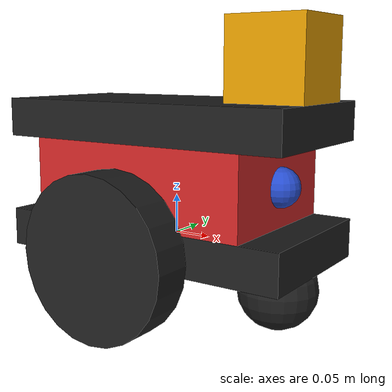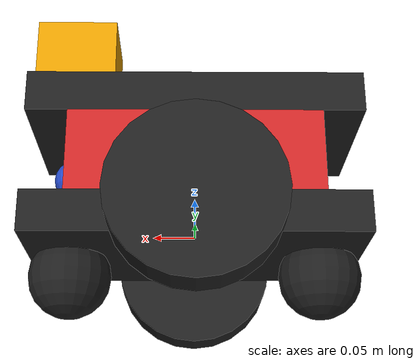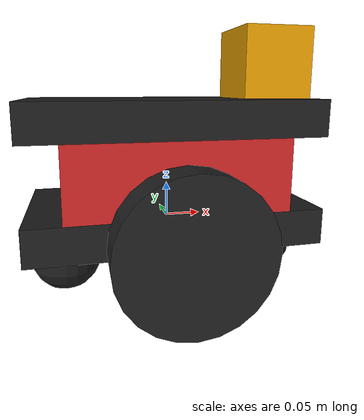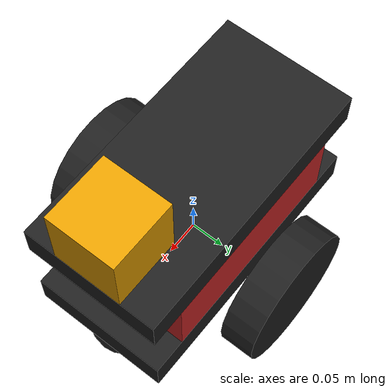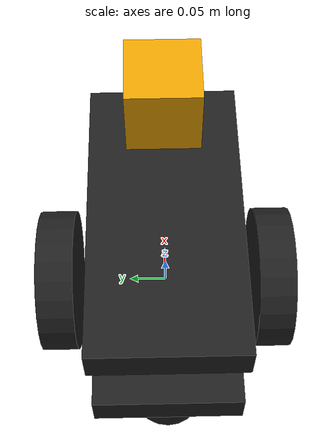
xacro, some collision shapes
<?xml version="1.0" ?>

<robot name="my_robot" xmlns:xacro="http://www.ros.org/wiki/xacro">

	<xacro:include filename="$(find my_robot)/urdf/my_robot.gazebo" />

	<link name="robot_footprint"></link>

    <joint name="robot_footprint_joint" type="fixed">
    	<origin xyz="0 0 0" rpy="0 0 0" />
        <parent link="robot_footprint" />
        <child link="chassis_base" />
    </joint>

    <link name="chassis_base">
    	<pose>0 0 0.1 0 0 0</pose>

        <inertial>
        	<mass value="7.5"/>
            <origin xyz="0 0 0" rpy="0 0 0"/>
            <inertia
            	ixx="0.1" ixy="0" ixz="0"
                iyy="0.125" iyz="0"
                izz="0.027"
            />
        </inertial>

        <visual name="chassis_base_visual">
        	<origin xyz="0 0 0" rpy="0 0 0"/>
            <geometry>
            	<box size="0.4 0.2 0.05" />
            </geometry>
        </visual>

        <collision name="chassis_base_collision">
        	<origin xyz="0 0 0" rpy="0 0 0" />
        	<geometry>
            	<box size="0.4 0.2 0.05" />
            </geometry>
        </collision>

        <collision name="back_caster_collision">
        	<origin xyz="-0.15 0 -0.05" rpy="0 0 0"/>
            <geometry>
            	<sphere radius="0.0499"/>
            </geometry>
        </collision>

        <visual name="back_caster_visual">
        	<origin xyz="-0.15 0 -0.05" rpy="0 0 0"/>
            <geometry>
            	<sphere radius="0.05"/>
            </geometry>
        </visual>

        <collision name="front_caster_collision">
        	<origin xyz="0.15 0 -0.05" rpy="0 0 0"/>
            <geometry>
            	<sphere radius="0.0499"/>
            </geometry>
        </collision>

        <visual name="front_caster_visual">
        	<origin xyz="0.15 0 -0.05" rpy="0 0 0"/>
            <geometry>
            	<sphere radius="0.05"/>
            </geometry>
        </visual>
	</link>

    <link name="left_wheel">
    	<inertial>
        	<mass value="5.0" />
            <inertia
            	ixx="0.1" ixy="0" ixz="0"
                iyy="0.1" iyz="0"
                izz="0.1"
            />
        </inertial>
        <visual name="left_wheel_visual">
        	<origin xyz="0 0 0" rpy="0 1.5707 1.5707"/>
        	<geometry>
            	<cylinder radius="0.1" length="0.05" />
            </geometry>
        </visual>

        <collision name="left_wheel_collision">
        	<origin xyz="0 0 0" rpy="0 1.5707 1.5707"/>
        	<geometry>
            	<cylinder radius="0.1" length="0.05" />
            </geometry>
		</collision>
    </link>

    <link name="right_wheel">
    	<inertial>
        	<mass value="5.0" />
            <inertia
            	ixx="0.1" ixy="0" ixz="0"
                iyy="0.1" iyz="0"
                izz="0.1"
            />
        </inertial>
        <visual name="right_wheel_visual">
        	<origin xyz="0 0 0" rpy="0 1.5707 1.5707" />
        	<geometry>
            	<cylinder radius="0.1" length="0.05" />
            </geometry>
        </visual>

        <collision name="right_wheel_collision">
        	<origin xyz="0 0 0" rpy="0 1.5707 1.5707" />
        	<geometry>
            	<cylinder radius="0.1" length="0.05" />
            </geometry>
		</collision>
	</link>

    <joint name="left_wheel_hinge" type="continuous">
    	<origin xyz="0 0.15 0" rpy="0 0 0"/>
        <parent link="chassis_base"/>
        <child link="left_wheel"/>
        <axis xyz="0 1 0" rpy="0 0 0"/>
        <limit effort="10000" velocity="1000"/>
        <dynamics damping="1.0" friction="1.0"/>
    </joint>

    <joint name="right_wheel_hinge" type="continuous">
    	<origin xyz="0 -0.15 0" rpy="0 0 0"/>
        <parent link="chassis_base"/>
        <child link="right_wheel"/>
        <axis xyz="0 1 0" rpy="0 0 0"/>
        <limit effort="10000" velocity="1000"/>
        <dynamics damping="1.0" friction="1.0"/>
	</joint>

    <link name="chassis_body">
    	<pose>0 0 0.175 0 0 0</pose>

        <inertial>
        	<mass value="11.25"/>
            <origin xyz="0 0 0" rpy="0 0 0" />
            <inertia
            	ixx="0.09" ixy="0" ixz="0"
                iyy="0.122" iyz="0"
                izz="0.1"
            />
        </inertial>

        <visual name="chassis_body_visual">
        	<origin xyz="0 0 0" rpy="0 0 0" />
        	<geometry>
            	<box size="0.3 0.2 0.1" />
            </geometry>
        </visual>

        <collision name="chassis_body_collision">
        	<origin xyz="0 0 0" rpy="0 0 0" />
        	<geometry>
            	<box size="0.3 0.2 0.1" />
            </geometry>
        </collision>
	</link>

    <joint name="chassis_body_base_joint" type="fixed">
    	<origin xyz="0 0 0.075" rpy="0 0 0"/>
        <parent link="chassis_base"/>
        <child link="chassis_body"/>
    </joint>

    <link name="chassis_top">
    	<pose>0 0 0.225 0 0 0</pose>

        <inertial>
        	<mass value="7.5"/>
            <origin xyz="0 0 0" rpy="0 0 0"/>
            <inertia
            	ixx="0.1" ixy="0" ixz="0"
                iyy="0.125" iyz="0"
                izz="0.027"
            />
        </inertial>

        <visual name="chassis_top_visual">
        	<origin xyz="0 0 0" rpy="0 0 0"/>
            <geometry>
            	<box size="0.4 0.2 0.05" />
            </geometry>
        </visual>

        <collision name="chassis_top_collision">
        	<origin xyz="0 0 0" rpy="0 0 0" />
        	<geometry>
            	<box size="0.4 0.2 0.05" />
            </geometry>
        </collision>
	</link>

    <joint name="chassis_body_top_joint" type="fixed">
    	<origin xyz="0 0 0.075" rpy="0 0 0"/>
        <parent link="chassis_body"/>
        <child link="chassis_top"/>
    </joint>

    <link name="camera">
        <inertial>
        	<mass value="0.052"/>
            <box_inertia m="0.1" x="0.05" y="0.05" z="0.05" />
            <inertia
            	ixx="6.8e-7" ixy="0" ixz="0"
                iyy="6.8e-7" iyz="0"
                izz="6.8e-7"
            />
        </inertial>
        <visual name="camera_visual">
        	<origin xyz="0 0 0" rpy="0 0 0"/>
            <geometry>
                <sphere radius="0.025"/>
            </geometry>
        </visual>
        <collision name="camera_collision">
            <geometry>
                <sphere radius="0.025"/>
            </geometry>
        </collision>
    </link>

    <joint type="fixed" name="camera_joint">
    	<origin xyz="0.15 0 0" rpy="0 0 0"/>
        <parent link="chassis_body"/>
        <child link="camera"/>
        <axis xyz="0 1 0"/>
    </joint>

    <link name="camera_link_optical">
    </link>

    <joint name="camera_optical_joint" type="fixed">
    	<origin xyz="0 0 0" rpy="-1.5707 0 -1.5707" />
        <parent link="camera" />
        <child link="camera_link_optical" />
    </joint>

    <link name="hokuyo">
    	<inertial>
        	<mass value="1e-5"/>
            <inertia
            	ixx="1e-6" ixy="0" ixz="0"
                iyy="1e-6" iyz="0"
                izz="1e-6"
            />
        </inertial>
        <visual name="hokuyo_visual">
        	<origin xyz="0 0 0" rpy="0 0 0"/>
            <geometry>
            	<mesh filename="package://my_robot/meshes/hokuyo.dae"/>
            </geometry>
        </visual>
        <collision name="hokuyo_collision">
        	<origin xyz="0 0 0" rpy="0 0 0"/>
            <geometry>
            	<box size="0.1 0.1 0.1"/>
            </geometry>
        </collision>
	</link>

    <joint name="hokuyo_joint" type="fixed">
    	<origin xyz="0.15 0 0.075" rpy="0 0 0"/>
        <parent link="chassis_top"/>
        <child link="hokuyo"/>
        <axis xyz="0 1 0"/>
    </joint>
    <gazebo reference="left_wheel">
        <material>Gazebo/Black</material>
    </gazebo>
    <gazebo reference="right_wheel">
        <material>Gazebo/Black</material>
    </gazebo>
    <gazebo reference="chassis_base">
        <material>Gazebo/Black</material>
    </gazebo>
    <gazebo reference="chassis_body">
        <material>Gazebo/Red</material>
    </gazebo>
        <gazebo reference="chassis_top">
        <material>Gazebo/Black</material>
    </gazebo>
	<gazebo reference="camera">
        <material>Gazebo/Blue</material>
    </gazebo>
</robot>
